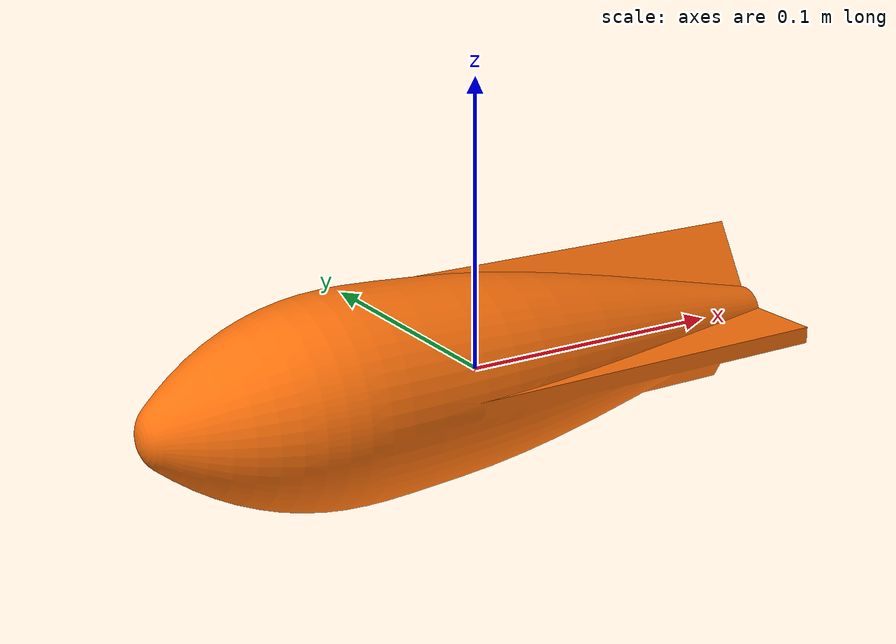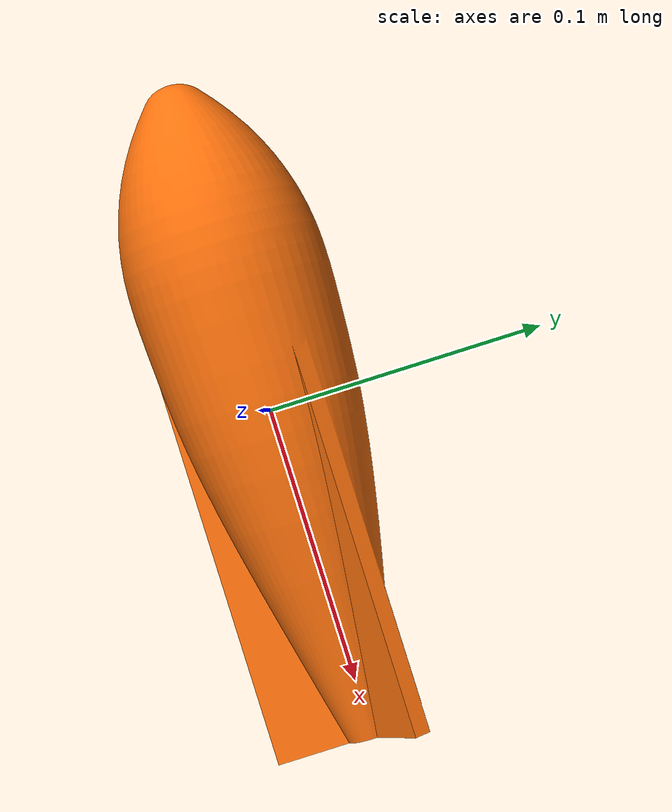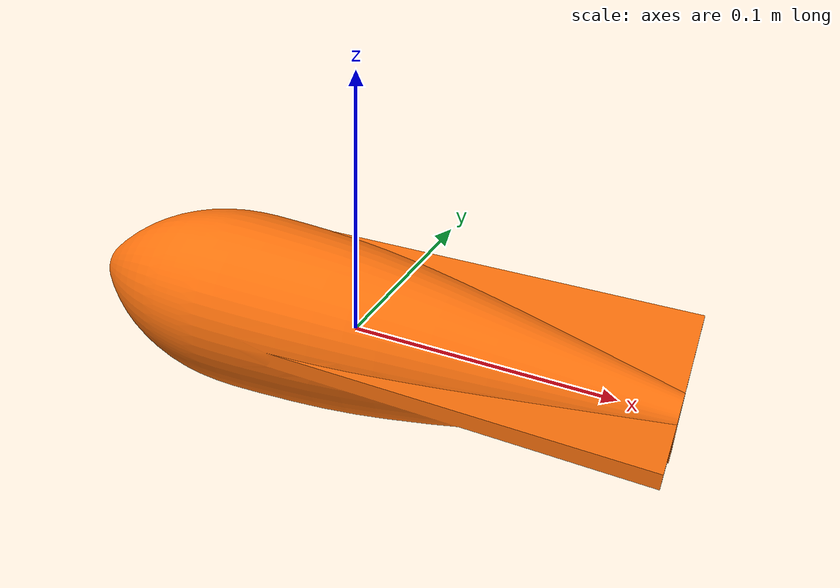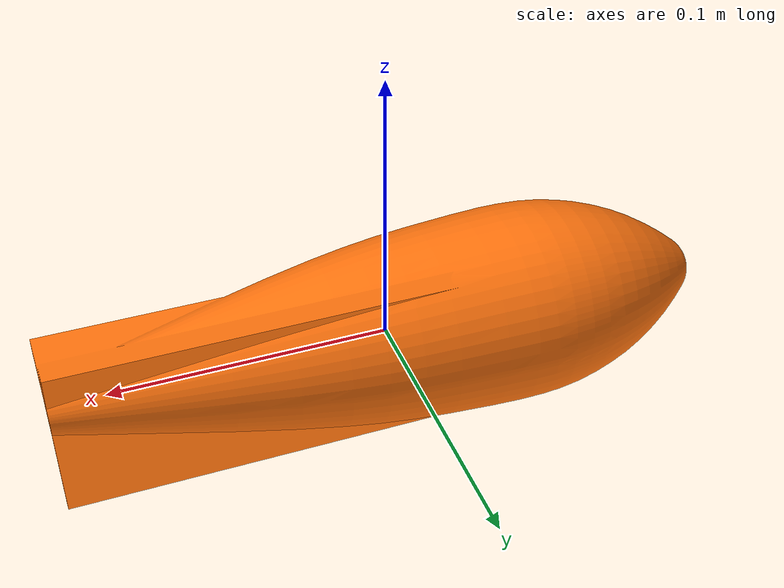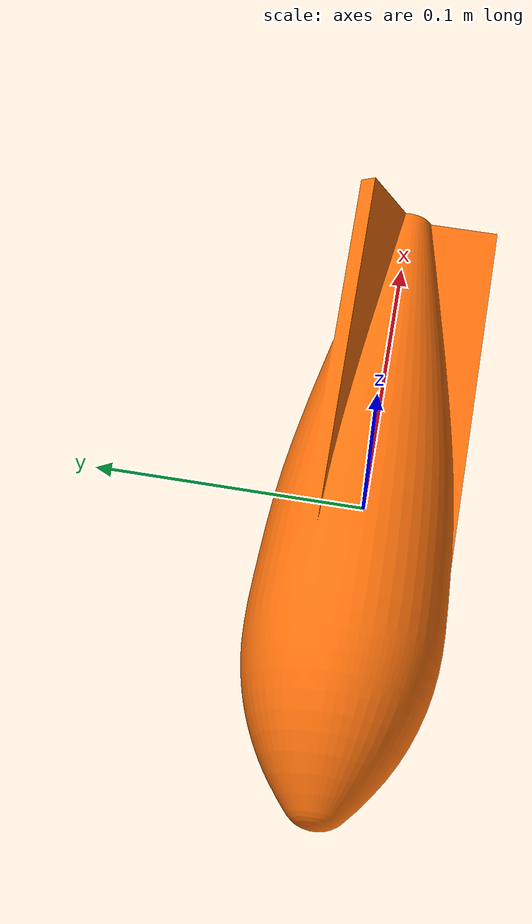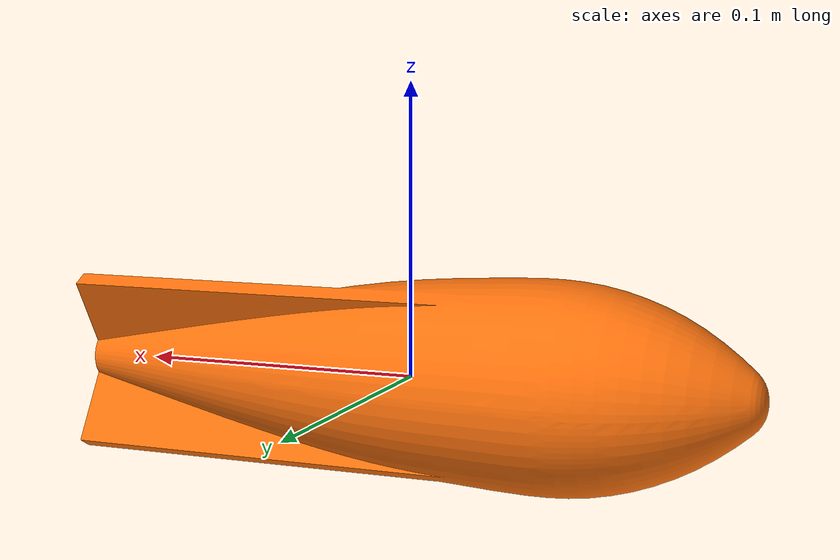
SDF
<sdf version='1.9'>
  <model name='payload_torpedo'>
    <link name='payload_link'>
      <inertial>
        <mass>0.0223</mass>
        <inertia><ixx>1.0e-5</ixx><ixy>0</ixy><ixz>0</ixz><iyy>1.0e-5</iyy><iyz>0</iyz><izz>1.0e-5</izz></inertia>
      </inertial>
      <collision name='payload_collision'>
        <pose>-0.6732 1.2666 -0.8614 0 0 0</pose>
        <geometry>
          <mesh>
            <uri>model://torPEDO/meshes/base_link.STL</uri>
            <scale>1 1 1</scale>
          </mesh>
        </geometry>
      </collision>
      <visual name='payload_visual'>
        <pose>-2.0196 3.7998 -2.5842 0 0 0</pose>
        <geometry>
          <mesh>
            <uri>model://torPEDO/meshes/base_link.STL</uri>
            <scale>3 3 3</scale>
          </mesh>
        </geometry>
        <material>
          <ambient>1.0 0.35 0.02 1</ambient>
          <diffuse>1.0 0.45 0.05 1</diffuse>
          <specular>0.3 0.15 0.05 1</specular>
          <emissive>0.25 0.08 0.0 1</emissive>
        </material>
      </visual>
    </link>

    <plugin filename="ignition-gazebo-hydrodynamics-system"
            name="ignition::gazebo::systems::Hydrodynamics">
      <link_name>payload_link</link_name>
      <xU>-0.0446</xU>
      <yV>-0.0446</yV>
      <zW>-0.0446</zW>
    </plugin>

    <plugin filename="ignition-gazebo-odometry-publisher-system"
            name="ignition::gazebo::systems::OdometryPublisher">
      <odom_frame>world</odom_frame>
      <robot_base_frame>payload_link</robot_base_frame>
      <dimensions>3</dimensions>
      <odom_publish_frequency>50</odom_publish_frequency>
      <publish_tf>false</publish_tf>
    </plugin>
  </model>
</sdf>
